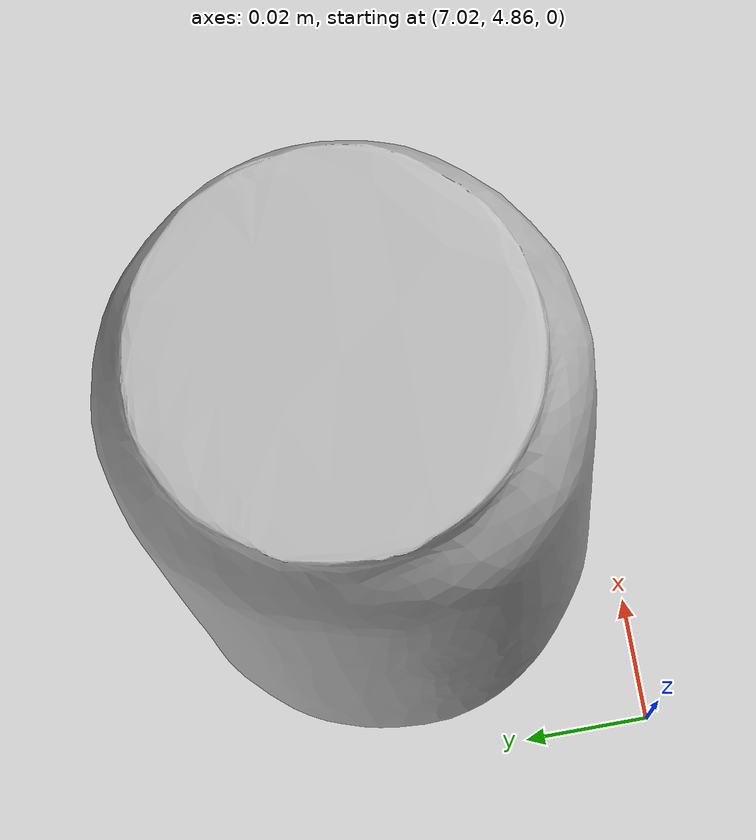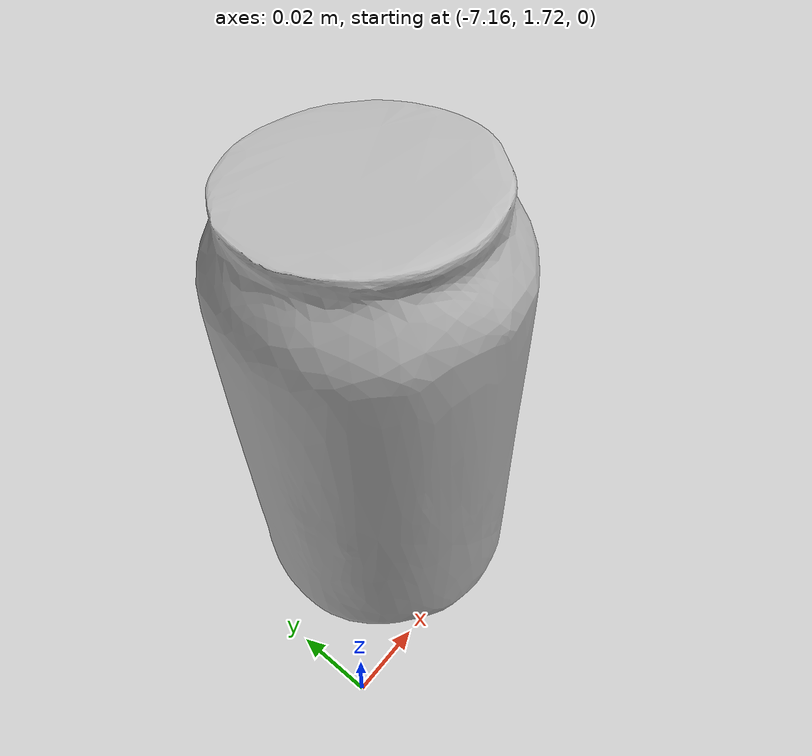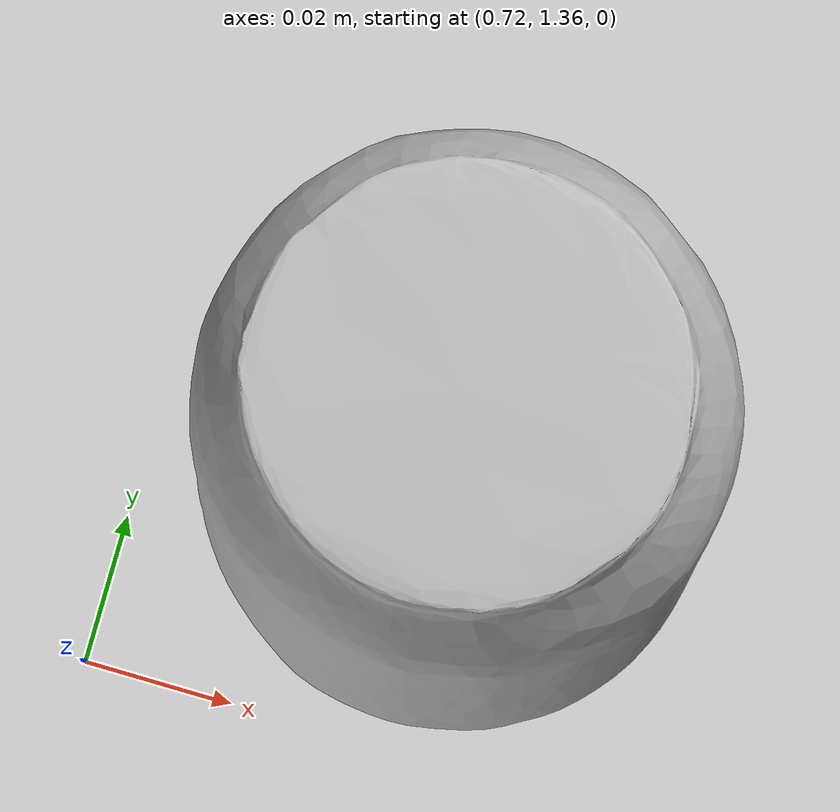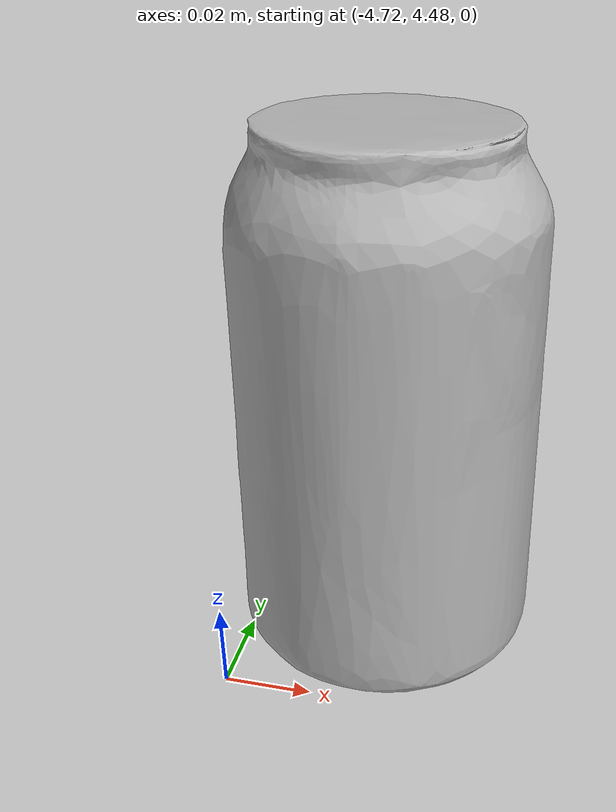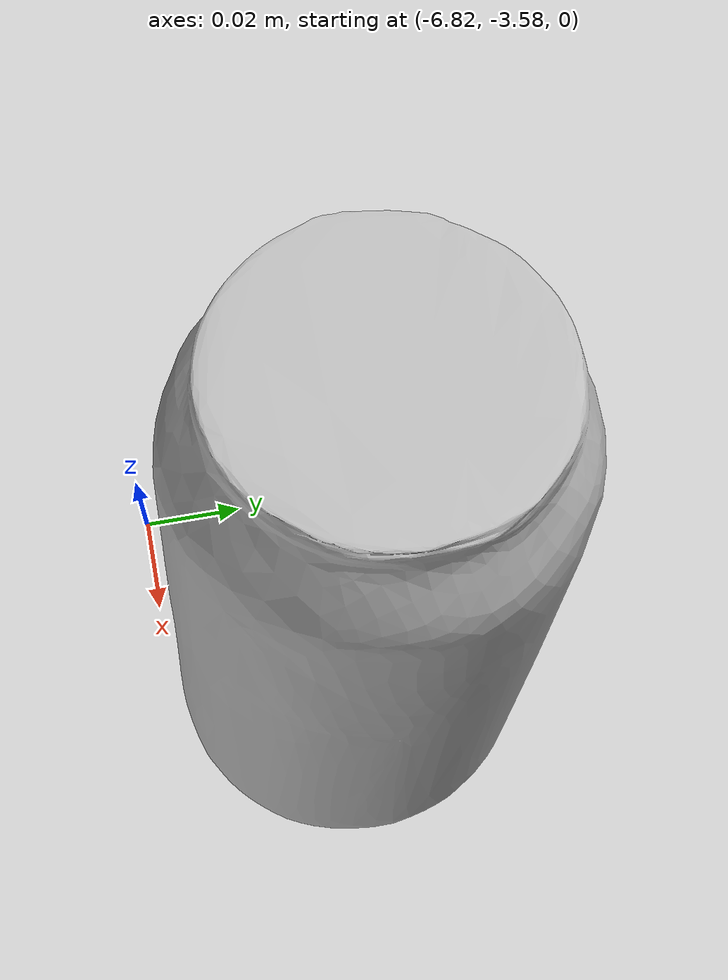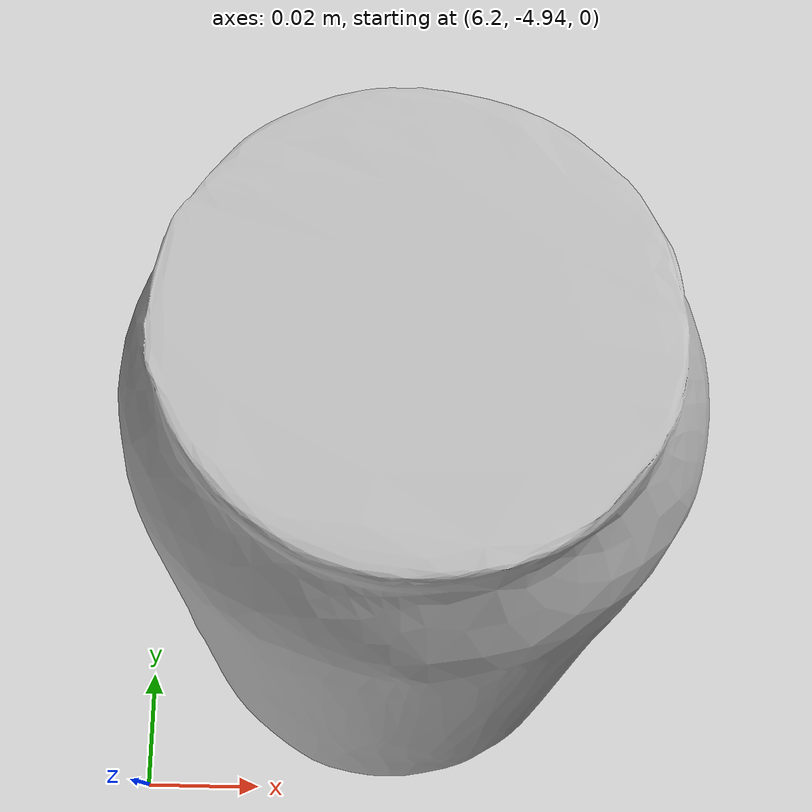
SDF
<sdf version="1.7">
 <world name="default">
  <light name="sun" type="directional">
   <pose>0 0 10 0 -0 0</pose>
   <diffuse>0.8 0.8 0.8 1</diffuse>
   <specular>0.2 0.2 0.2 1</specular>
   <attenuation>
    <range>1000</range>
    <constant>0.9</constant>
    <linear>0.01</linear>
    <quadratic>0.001</quadratic>
   </attenuation>
   <direction>-0.5 0.1 -0.9</direction>
   <spot><inner_angle>0</inner_angle><outer_angle>0</outer_angle><falloff>0</falloff></spot>
  </light>
  <model name="ground_plane">
   <static>1</static>
   <link name="link">
    <collision name="collision">
     <geometry><plane><normal>0 0 1</normal><size>100 100</size></plane></geometry>
     <surface><friction><ode><mu>100</mu><mu2>50</mu2></ode></friction></surface>
    </collision>
    <visual name="visual">
     <cast_shadows>0</cast_shadows>
     <geometry><plane><normal>0 0 1</normal><size>100 100</size></plane></geometry>
     <material>
      <script><uri>file://media/materials/scripts/gazebo.material</uri><name>Gazebo/Grey</name></script>
     </material>
    </visual>
   </link>
  </model>
  <physics type="ode">
   <real_time_update_rate>1000</real_time_update_rate>
   <max_step_size>0.001</max_step_size>
   <real_time_factor>1</real_time_factor>
   <ode>
    <solver>
     <type>quick</type>
     <iters>150</iters>
     <precon_iters>0</precon_iters>
     <sor>1.4</sor>
     <use_dynamic_moi_rescaling>1</use_dynamic_moi_rescaling>
    </solver>
    <constraints>
     <cfm>1e-05</cfm>
     <erp>0.2</erp>
     <contact_max_correcting_vel>2000</contact_max_correcting_vel>
     <contact_surface_layer>0.01</contact_surface_layer>
    </constraints>
   </ode>
  </physics>
  <scene><ambient>0.4 0.4 0.4 1</ambient><background>0.7 0.7 0.7 1</background><shadows>1</shadows></scene>
  <gravity>0 0 -9.8</gravity>
  <magnetic_field>6e-06 2.3e-05 -4.2e-05</magnetic_field>
  <atmosphere type="adiabatic"/>
  <spherical_coordinates>
   <surface_model>EARTH_WGS84</surface_model>
   <latitude_deg>0</latitude_deg>
   <longitude_deg>0</longitude_deg>
   <elevation>0</elevation>
   <heading_deg>0</heading_deg>
  </spherical_coordinates>
  <model name="coke_can">
   <link name="link">
    <inertial>
     <pose>0 0 0.06 0 -0 0</pose>
     <mass>0.39</mass>
     <inertia>
      <ixx>0.00055575</ixx>
      <ixy>0</ixy>
      <ixz>0</ixz>
      <iyy>0.00055575</iyy>
      <iyz>0</iyz>
      <izz>0.0001755</izz>
     </inertia>
    </inertial>
    <collision name="collision">
     <pose>0.003937 0.004724 -0.18 0 -0 0</pose>
     <geometry><mesh><uri>model://coke_can/meshes/coke_can.dae</uri></mesh></geometry>
     <surface>
      <friction><ode><mu>1</mu><mu2>1</mu2></ode></friction>
      <contact><ode><kp>1e+07</kp><kd>1</kd><min_depth>0.001</min_depth><max_vel>0.1</max_vel></ode></contact>
     </surface>
    </collision>
    <visual name="visual">
     <pose>0.003937 0.004724 -0.18 0 -0 0</pose>
     <geometry><mesh><uri>model://coke_can/meshes/coke_can.dae</uri></mesh></geometry>
    </visual>
   </link>
   <pose>-4.68708 4.50707 -0.003114 -0.056004 -0.012143 -0.000382</pose>
  </model>
  <model name="coke_can_0">
   <link name="link">
    <inertial>
     <pose>0 0 0.06 0 -0 0</pose>
     <mass>0.39</mass>
     <inertia>
      <ixx>0.00055575</ixx>
      <ixy>0</ixy>
      <ixz>0</ixz>
      <iyy>0.00055575</iyy>
      <iyz>0</iyz>
      <izz>0.0001755</izz>
     </inertia>
    </inertial>
    <collision name="collision">
     <pose>0.003937 0.004724 -0.18 0 -0 0</pose>
     <geometry><mesh><uri>model://coke_can/meshes/coke_can.dae</uri></mesh></geometry>
     <surface>
      <friction><ode><mu>1</mu><mu2>1</mu2></ode></friction>
      <contact><ode><kp>1e+07</kp><kd>1</kd><min_depth>0.001</min_depth><max_vel>0.1</max_vel></ode></contact>
     </surface>
    </collision>
    <visual name="visual">
     <pose>0.003937 0.004724 -0.18 0 -0 0</pose>
     <geometry><mesh><uri>model://coke_can/meshes/coke_can.dae</uri></mesh></geometry>
    </visual>
   </link>
   <pose>-6.77515 -3.54379 -0.003073 -0.055935 -0.012486 -0.000381</pose>
  </model>
  <model name="coke_can_1">
   <link name="link">
    <inertial>
     <pose>0 0 0.06 0 -0 0</pose>
     <mass>0.39</mass>
     <inertia>
      <ixx>0.00055575</ixx>
      <ixy>0</ixy>
      <ixz>0</ixz>
      <iyy>0.00055575</iyy>
      <iyz>0</iyz>
      <izz>0.0001755</izz>
     </inertia>
    </inertial>
    <collision name="collision">
     <pose>0.003937 0.004724 -0.18 0 -0 0</pose>
     <geometry><mesh><uri>model://coke_can/meshes/coke_can.dae</uri></mesh></geometry>
     <surface>
      <friction><ode><mu>1</mu><mu2>1</mu2></ode></friction>
      <contact><ode><kp>1e+07</kp><kd>1</kd><min_depth>0.001</min_depth><max_vel>0.1</max_vel></ode></contact>
     </surface>
    </collision>
    <visual name="visual">
     <pose>0.003937 0.004724 -0.18 0 -0 0</pose>
     <geometry><mesh><uri>model://coke_can/meshes/coke_can.dae</uri></mesh></geometry>
    </visual>
   </link>
   <pose>-7.11955 1.74523 -0.003018 -0.057147 -0.010062 -0.000376</pose>
  </model>
  <model name="coke_can_2">
   <link name="link">
    <inertial>
     <pose>0 0 0.06 0 -0 0</pose>
     <mass>0.39</mass>
     <inertia>
      <ixx>0.00055575</ixx>
      <ixy>0</ixy>
      <ixz>0</ixz>
      <iyy>0.00055575</iyy>
      <iyz>0</iyz>
      <izz>0.0001755</izz>
     </inertia>
    </inertial>
    <collision name="collision">
     <pose>0.003937 0.004724 -0.18 0 -0 0</pose>
     <geometry><mesh><uri>model://coke_can/meshes/coke_can.dae</uri></mesh></geometry>
     <surface>
      <friction><ode><mu>1</mu><mu2>1</mu2></ode></friction>
      <contact><ode><kp>1e+07</kp><kd>1</kd><min_depth>0.001</min_depth><max_vel>0.1</max_vel></ode></contact>
     </surface>
    </collision>
    <visual name="visual">
     <pose>0.003937 0.004724 -0.18 0 -0 0</pose>
     <geometry><mesh><uri>model://coke_can/meshes/coke_can.dae</uri></mesh></geometry>
    </visual>
   </link>
   <pose>0.761068 1.39644 -0.002952 -0.059144 -0.006305 -0.000369</pose>
  </model>
  <model name="coke_can_3">
   <link name="link">
    <inertial>
     <pose>0 0 0.06 0 -0 0</pose>
     <mass>0.39</mass>
     <inertia>
      <ixx>0.00055575</ixx>
      <ixy>0</ixy>
      <ixz>0</ixz>
      <iyy>0.00055575</iyy>
      <iyz>0</iyz>
      <izz>0.0001755</izz>
     </inertia>
    </inertial>
    <collision name="collision">
     <pose>0.003937 0.004724 -0.18 0 -0 0</pose>
     <geometry><mesh><uri>model://coke_can/meshes/coke_can.dae</uri></mesh></geometry>
     <surface>
      <friction><ode><mu>1</mu><mu2>1</mu2></ode></friction>
      <contact><ode><kp>1e+07</kp><kd>1</kd><min_depth>0.001</min_depth><max_vel>0.1</max_vel></ode></contact>
     </surface>
    </collision>
    <visual name="visual">
     <pose>0.003937 0.004724 -0.18 0 -0 0</pose>
     <geometry><mesh><uri>model://coke_can/meshes/coke_can.dae</uri></mesh></geometry>
    </visual>
   </link>
   <pose>7.05807 4.89698 -0.002886 -0.061048 -0.002719 -0.000366</pose>
  </model>
  <model name="coke_can_4">
   <link name="link">
    <inertial>
     <pose>0 0 0.06 0 -0 0</pose>
     <mass>0.39</mass>
     <inertia>
      <ixx>0.00055575</ixx>
      <ixy>0</ixy>
      <ixz>0</ixz>
      <iyy>0.00055575</iyy>
      <iyz>0</iyz>
      <izz>0.0001755</izz>
     </inertia>
    </inertial>
    <collision name="collision">
     <pose>0.003937 0.004724 -0.18 0 -0 0</pose>
     <geometry><mesh><uri>model://coke_can/meshes/coke_can.dae</uri></mesh></geometry>
     <surface>
      <friction><ode><mu>1</mu><mu2>1</mu2></ode></friction>
      <contact><ode><kp>1e+07</kp><kd>1</kd><min_depth>0.001</min_depth><max_vel>0.1</max_vel></ode></contact>
     </surface>
    </collision>
    <visual name="visual">
     <pose>0.003937 0.004724 -0.18 0 -0 0</pose>
     <geometry><mesh><uri>model://coke_can/meshes/coke_can.dae</uri></mesh></geometry>
    </visual>
   </link>
   <pose>7.09343 0.303668 -0.002821 -0.062863 0.000703 -0.000366</pose>
  </model>
  <model name="coke_can_5">
   <link name="link">
    <inertial>
     <pose>0 0 0.06 0 -0 0</pose>
     <mass>0.39</mass>
     <inertia>
      <ixx>0.00055575</ixx>
      <ixy>0</ixy>
      <ixz>0</ixz>
      <iyy>0.00055575</iyy>
      <iyz>0</iyz>
      <izz>0.0001755</izz>
     </inertia>
    </inertial>
    <collision name="collision">
     <pose>0.003937 0.004724 -0.18 0 -0 0</pose>
     <geometry><mesh><uri>model://coke_can/meshes/coke_can.dae</uri></mesh></geometry>
     <surface>
      <friction><ode><mu>1</mu><mu2>1</mu2></ode></friction>
      <contact><ode><kp>1e+07</kp><kd>1</kd><min_depth>0.001</min_depth><max_vel>0.1</max_vel></ode></contact>
     </surface>
    </collision>
    <visual name="visual">
     <pose>0.003937 0.004724 -0.18 0 -0 0</pose>
     <geometry><mesh><uri>model://coke_can/meshes/coke_can.dae</uri></mesh></geometry>
    </visual>
   </link>
   <pose>6.24377 -4.90522 -0.002757 -0.057345 0.006193 -0.000513</pose>
  </model>
 </world>
</sdf>
